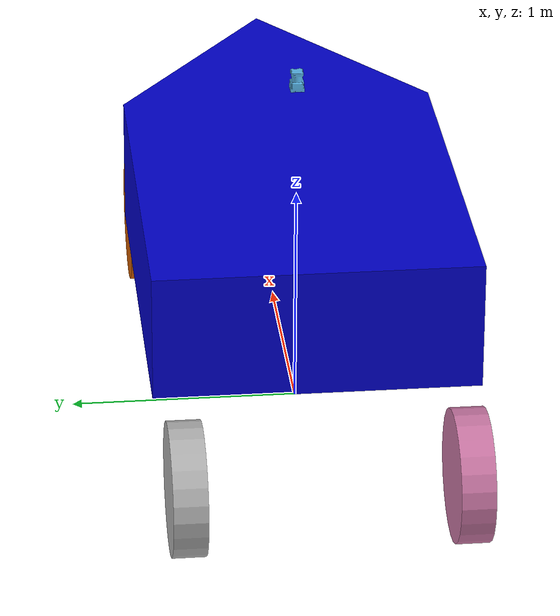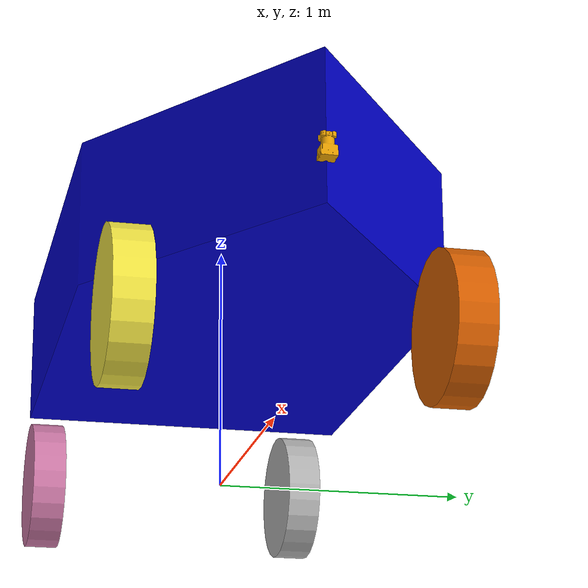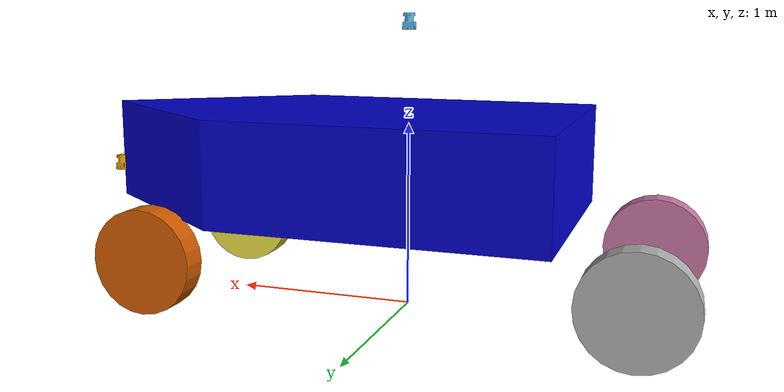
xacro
<?xml version="1.0"?>
<robot name="origins"
  xmlns:xacro="http://www.ros.org/wiki/xacro">
  <xacro:property name="camera_link" value="0.05" />

  <!-- Size of square 'camera' box -->
  <!-- Import Rviz colors -->
  <xacro:include filename="$(find cirkit_unit03_description)/urdf/materials.xacro" />
  <!-- Import macros -->
  <xacro:include filename="$(find cirkit_unit03_description)/urdf/cirkit_unit03_macro.xacro" />
  <link name="base_link">
    <visual>
      <origin xyz="-1.7575 -0.91 0.05" rpy="${PI/2} 0 ${PI/2}"/>
      <geometry>
        <mesh filename="package://cirkit_unit03_description/meshes/cirkit_unit03/atlas2.STL"/>
      </geometry>
      <material name="blue"/>
    </visual>
    <collision>
      <origin rpy="${PI/2} 0 0" xyz="-0.9 0.7 0.5" />
      <geometry>
        <mesh filename="package://cirkit_unit03_description/meshes/cirkit_unit03/collision_small.STL" scale="0.001 0.001 0.001"/>
      </geometry>
    </collision>
    <collision>
      <origin rpy="0 0 0" xyz="-0.882946311 0 0.78285" />
      <geometry>
        <box size="1.6 1.4 0.5657"/>
      </geometry>
    </collision>
    <xacro:default_inertial mass="1450"/>
  </link>
  <xacro:rear_wheel/>
  <xacro:front_wheel right_left="right" reflect_right_left="1"/>
  <xacro:front_wheel right_left="left" reflect_right_left="-1"/>
  <xacro:wheel right_left="right" reflect_right_left="1" front_rear="rear" reflect_front_rear="-1"/>
  <xacro:wheel right_left="left" reflect_right_left="-1" front_rear="rear" reflect_front_rear="-1"/>

  <!-- front_bottom_lrf -->
  <link name="front_bottom_lrf">
    <visual>
      <origin rpy="0 0 0" xyz="0 0 0"/>
      <geometry>
        <mesh filename="package://cirkit_unit03_description/meshes/LRF/UTM-30LX.dae"/>
        <!-- mesh do LIDAR -->
      </geometry>
    </visual>
  </link>

  <joint name="base_to_front_bottom_lrf" type="fixed">
    <axis xyz="0 1 0"/>
    <parent link="base_link"/>
    <child link="front_bottom_lrf"/>
    <origin xyz="1.82 0 0.65"/>
  </joint>

  <!-- line_lrf -->
  <link name="line_lrf">
    <visual>
      <origin rpy="0 0 0" xyz="0 0 0"/>
      <geometry>
        <mesh filename="package://cirkit_unit03_description/meshes/LRF/UTM-30LX.dae"/>
        <!-- mesh do LIDAR -->
      </geometry>
    </visual>
  </link>

  <joint name="base_to_line_lrf" type="fixed">
    <axis xyz="0 1 0"/>
    <parent link="base_link"/>
    <child link="line_lrf"/>
    <origin rpy="0 0 0" xyz="0 0 1.50"/>
  </joint>

  <!-- steer -->
  <link name="front_steer_link"/>

  <joint name="front_steer_joint" type="fixed">
    <axis xyz="0 1 0"/>
    <parent link="base_link"/>
    <child link="front_steer_link"/>
    <origin xyz="${length_from_base_to_wheel_front_x} 0 ${radius_wheel}"/>
  </joint>

  <transmission name="tran1">
    <type>transmission_interface/SimpleTransmission</type>

    <joint name="base_to_left_rear_wheel">
      <hardwareInterface>EffortJointInterface</hardwareInterface>
    </joint>

    <actuator name="motor1">
      <hardwareInterface>EffortJointInterface</hardwareInterface>
      <mechanicalReduction>1</mechanicalReduction>
    </actuator>
  </transmission>

  <transmission name="tran2">
    <type>transmission_interface/SimpleTransmission</type>

    <joint name="base_to_right_rear_wheel">
      <hardwareInterface>EffortJointInterface</hardwareInterface>
    </joint>

    <actuator name="motor2">
      <hardwareInterface>EffortJointInterface</hardwareInterface>
      <mechanicalReduction>1</mechanicalReduction>
    </actuator>
  </transmission>

</robot>

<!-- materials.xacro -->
<robot>

  <material name="black">
    <color rgba="0.0 0.0 0.0 1.0"/>
  </material>

  <material name="blue">
    <color rgba="0 0 0.8 1"/>
  </material>

  <material name="green">
    <color rgba="0.0 0.8 0.0 1.0"/>
  </material>

  <material name="grey">
    <color rgba="0.2 0.2 0.2 1.0"/>
  </material>

  <material name="orange">
    <color rgba="${255/255} ${108/255} ${10/255} 1.0"/>
  </material>

  <material name="brown">
    <color rgba="${222/255} ${207/255} ${195/255} 1.0"/>
  </material>

  <material name="red">
    <color rgba="0.8 0.0 0.0 1.0"/>
  </material>

  <material name="white">
    <color rgba="1.0 1.0 1.0 1.0"/>
  </material>

</robot>

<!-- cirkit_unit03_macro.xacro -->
<robot name="origins"
    xmlns:xacro="http://www.ros.org/wiki/xacro">
    <!-- Constants for math -->
    <xacro:property name="PI" value="3.1415926535897931" />
    <!-- Constants for robot dimensions -->
    <xacro:property name="length_wheel" value="0.145" />
    <xacro:property name="radius_wheel" value="0.285" />
    <xacro:property name="base_center_x" value="0.0" />
    <xacro:property name="length_from_base_center_to_wheel_x" value="1.275" />
    <xacro:property name="length_from_base_to_wheel_front_x" value="1.275" />
    <xacro:property name="length_from_base_to_wheel_rear_x" value="1.275" />
    <xacro:property name="length_from_base_to_wheel_y" value="0.5925" />
    <xacro:macro name="default_inertial" params="mass">
        <inertial>
            <mass value="${mass}" />
            <inertia ixx="1.0" ixy="0.0" ixz="0.0" iyy="1.0" iyz="0.0" izz="1.0" />
        </inertial>
    </xacro:macro>
    <!-- wheel macro -->
    <xacro:macro name="rear_wheel">
        <link name="rear_wheel_link">
            <collision>
                <origin rpy="${PI/2} 0 0" xyz="0 0 0"/>
                <geometry>
                    <cylinder length="${length_wheel}" radius="${radius_wheel}"/>
                </geometry>
            </collision>
        </link>
        <joint name="rear_wheel_joint" type="continuous">
            <axis xyz="0 1 0"/>
            <parent link="base_link"/>
            <child link="rear_wheel_link"/>
            <origin xyz="${-base_center_x-length_from_base_center_to_wheel_x} 0 ${radius_wheel}"/>
        </joint>
    </xacro:macro>
    <xacro:macro name="wheel" params="right_left reflect_right_left front_rear reflect_front_rear">
        <link name="${right_left}_${front_rear}_wheel">
            <visual>
                <!-- when reflect_right_left = 1 to be 0 reflect_right_left= -1 to be PI -->
                <origin rpy="${PI/2} 0 0" xyz="0 0 0"/>
                <geometry>
                    <cylinder length="${length_wheel}" radius="${radius_wheel}"/>
                </geometry>
            </visual>
            <collision>
                <origin rpy="${PI/2} 0 0" xyz="0 0 0"/>
                <geometry>
                    <cylinder length="${length_wheel}" radius="${radius_wheel}"/>
                </geometry>
            </collision>
            <xacro:default_inertial mass="1"/>
        </link>
        <joint name="base_to_${right_left}_${front_rear}_wheel" type="continuous">
            <axis xyz="0 1 0"/>
            <parent link="base_link"/>
            <child link="${right_left}_${front_rear}_wheel"/>
            <origin xyz="${base_center_x+reflect_front_rear*length_from_base_center_to_wheel_x} ${-reflect_right_left*length_from_base_to_wheel_y} ${radius_wheel}"/>
        </joint>
        <transmission name="tran_${right_left}_${front_rear}">
            <type>transmission_interface/SimpleTransmission</type>
            <joint name="base_to_${right_left}_${front_rear}_wheel">
                <hardwareInterface>VelocityJointInterface</hardwareInterface>
            </joint>
            <actuator name="${right_left}_${front_rear}">
                <hardwareInterface>VelocityJointInterface</hardwareInterface>
                <mechanicalReduction>1</mechanicalReduction>
            </actuator>
        </transmission>
    </xacro:macro>
    <!-- front wheel macro -->
    <xacro:macro name="front_wheel" params="right_left reflect_right_left">
        <!-- steer_right -->
        <link name="steer_${right_left}">
            <inertial>
                <mass value="1.0" />
                <inertia ixx="1.0" ixy="0.0" ixz="0.0" iyy="1.0" iyz="0.0" izz="1.0" />
            </inertial>
        </link>
        <joint name="base_to_${right_left}_front_steer" type="revolute">
            <axis xyz="0 0 1"/>
            <parent link="base_link"/>
            <child link="steer_${right_left}"/>
            <origin xyz="${base_center_x+length_from_base_center_to_wheel_x} ${-reflect_right_left*length_from_base_to_wheel_y} ${radius_wheel}"/>
            <dynamics damping="0.7" friction="0.7"/>
            <limit effort="7.0" lower="${-80*PI/180}" upper="${80*PI/180}" velocity="${200.0*PI/180.0*0.95}"/>
        </joint>
        <link name="${right_left}_front_wheel">
            <visual>
                <!-- when reflect_right_left = 1 to be 0 reflect_right_left= -1 to be PI -->
                <origin rpy="${PI/2} 0 0" xyz="0 0 0"/>
                <geometry>
                    <cylinder length="${length_wheel}" radius="${radius_wheel}"/>
                </geometry>
            </visual>
            <collision>
                <origin rpy="${PI/2} 0 0" xyz="0 0 0"/>
                <geometry>
                    <cylinder length="${length_wheel}" radius="${radius_wheel}"/>
                </geometry>
            </collision>
            <xacro:default_inertial mass="1"/>
        </link>
        <joint name="base_to_${right_left}_front_wheel" type="continuous">
            <axis xyz="0 1 0"/>
            <parent link="steer_${right_left}"/>
            <child link="${right_left}_front_wheel"/>
            <origin xyz="0 0 0"/>
        </joint>
        <transmission name="tran_${right_left}_front">
            <type>transmission_interface/SimpleTransmission</type>
            <joint name="base_to_${right_left}_front_wheel">
                <hardwareInterface>VelocityJointInterface</hardwareInterface>
            </joint>
            <actuator name="${right_left}_front">
                <hardwareInterface>VelocityJointInterface</hardwareInterface>
                <mechanicalReduction>1</mechanicalReduction>
            </actuator>
        </transmission>
    </xacro:macro>
</robot>
